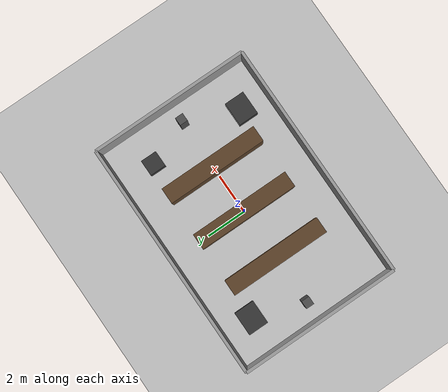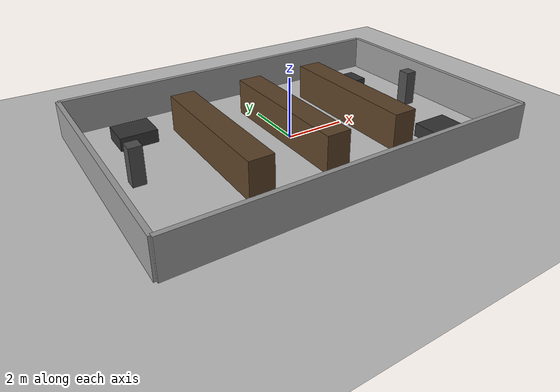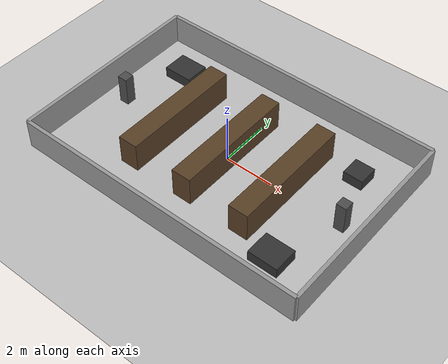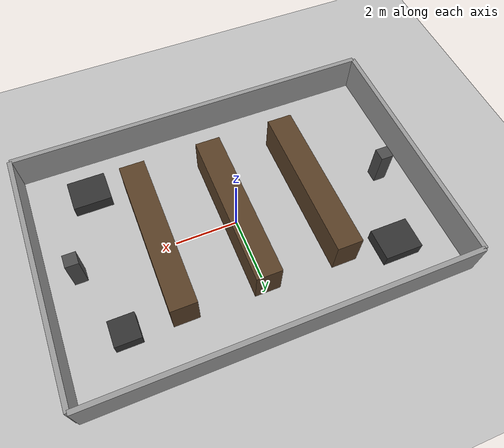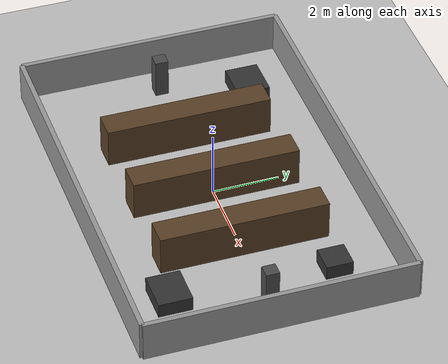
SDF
<?xml version="1.0" ?>
<sdf version="1.8">
  <world name="almacen">

    <!-- Systems -->
    <plugin filename="gz-sim-physics-system" name="gz::sim::systems::Physics"></plugin>
    <plugin filename="gz-sim-user-commands-system" name="gz::sim::systems::UserCommands"></plugin>
    <plugin filename="gz-sim-scene-broadcaster-system" name="gz::sim::systems::SceneBroadcaster"></plugin>
    <plugin filename="gz-sim-sensors-system" name="gz::sim::systems::Sensors">
      <render_engine>ogre2</render_engine>
    </plugin>

    <physics name="1ms" type="ignored">
      <max_step_size>0.001</max_step_size>
      <real_time_factor>1.0</real_time_factor>
    </physics>

    <!-- Light -->
    <light type="directional" name="sun">
      <cast_shadows>true</cast_shadows>
      <pose>0 0 10 0 0 0</pose>
      <diffuse>0.8 0.8 0.8 1</diffuse>
      <specular>0.2 0.2 0.2 1</specular>
      <attenuation>
        <range>1000</range>
        <constant>0.9</constant>
        <linear>0.01</linear>
        <quadratic>0.001</quadratic>
      </attenuation>
      <direction>-0.5 0.1 -0.9</direction>
    </light>

    <!-- Ground -->
    <model name="ground_plane">
      <static>true</static>
      <link name="link">
        <collision name="collision">
          <geometry>
            <plane>
              <normal>0 0 1</normal>
              <size>100 100</size>
            </plane>
          </geometry>
        </collision>
        <visual name="visual">
          <geometry>
            <plane>
              <normal>0 0 1</normal>
              <size>100 100</size>
            </plane>
          </geometry>
          <material>
            <ambient>0.75 0.75 0.75 1</ambient>
            <diffuse>0.75 0.75 0.75 1</diffuse>
            <specular>0.2 0.2 0.2 1</specular>
          </material>
        </visual>
      </link>
    </model>

    <!-- Warehouse perimeter (12m x 8m), walls height 1.2m      -->
    <!-- Centered at origin. SLAM-friendly: clear corners.     -->
    <!-- North wall -->
    <model name="wall_north">
      <static>true</static>
      <pose>0 4 0.6 0 0 0</pose>
      <link name="link">
        <collision name="collision">
          <geometry><box><size>12 0.15 1.2</size></box></geometry>
        </collision>
        <visual name="visual">
          <geometry><box><size>12 0.15 1.2</size></box></geometry>
          <material><ambient>0.6 0.6 0.6 1</ambient></material>
        </visual>
      </link>
    </model>

    <!-- South wall -->
    <model name="wall_south">
      <static>true</static>
      <pose>0 -4 0.6 0 0 0</pose>
      <link name="link">
        <collision name="collision">
          <geometry><box><size>12 0.15 1.2</size></box></geometry>
        </collision>
        <visual name="visual">
          <geometry><box><size>12 0.15 1.2</size></box></geometry>
          <material><ambient>0.6 0.6 0.6 1</ambient></material>
        </visual>
      </link>
    </model>

    <!-- East wall -->
    <model name="wall_east">
      <static>true</static>
      <pose>6 0 0.6 0 0 0</pose>
      <link name="link">
        <collision name="collision">
          <geometry><box><size>0.15 8 1.2</size></box></geometry>
        </collision>
        <visual name="visual">
          <geometry><box><size>0.15 8 1.2</size></box></geometry>
          <material><ambient>0.6 0.6 0.6 1</ambient></material>
        </visual>
      </link>
    </model>

    <!-- West wall -->
    <model name="wall_west">
      <static>true</static>
      <pose>-6 0 0.6 0 0 0</pose>
      <link name="link">
        <collision name="collision">
          <geometry><box><size>0.15 8 1.2</size></box></geometry>
        </collision>
        <visual name="visual">
          <geometry><box><size>0.15 8 1.2</size></box></geometry>
          <material><ambient>0.6 0.6 0.6 1</ambient></material>
        </visual>
      </link>
    </model>

    <!-- Shelving aisles (obstacles)   -->
    <!-- 3 aisles, leaving corridors   -->
    <model name="shelf_row_1">
      <static>true</static>
      <pose>-2.5 0 0.6 0 0 0</pose>
      <link name="link">
        <collision name="collision">
          <geometry><box><size>0.8 5.0 1.2</size></box></geometry>
        </collision>
        <visual name="visual">
          <geometry><box><size>0.8 5.0 1.2</size></box></geometry>
          <material><ambient>0.35 0.25 0.15 1</ambient></material>
        </visual>
      </link>
    </model>

    <model name="shelf_row_2">
      <static>true</static>
      <pose>0.0 0 0.6 0 0 0</pose>
      <link name="link">
        <collision name="collision">
          <geometry><box><size>0.8 5.0 1.2</size></box></geometry>
        </collision>
        <visual name="visual">
          <geometry><box><size>0.8 5.0 1.2</size></box></geometry>
          <material><ambient>0.35 0.25 0.15 1</ambient></material>
        </visual>
      </link>
    </model>

    <model name="shelf_row_3">
      <static>true</static>
      <pose>2.5 0 0.6 0 0 0</pose>
      <link name="link">
        <collision name="collision">
          <geometry><box><size>0.8 5.0 1.2</size></box></geometry>
        </collision>
        <visual name="visual">
          <geometry><box><size>0.8 5.0 1.2</size></box></geometry>
          <material><ambient>0.35 0.25 0.15 1</ambient></material>
        </visual>
      </link>
    </model>

    <!-- Pallets / boxes (small items) -->
    <model name="pallet_a">
      <static>true</static>
      <pose>-4.2 2.5 0.12 0 0 0</pose>
      <link name="link">
        <collision name="collision">
          <geometry><box><size>1.2 1.0 0.6</size></box></geometry>
        </collision>
        <visual name="visual">
          <geometry><box><size>1.2 1.0 0.6</size></box></geometry>
          <material><ambient>0.2 0.2 0.2 1</ambient></material>
        </visual>
      </link>
    </model>

    <model name="pallet_b">
      <static>true</static>
      <pose>4.0 -2.6 0.12 0 0 0</pose>
      <link name="link">
        <collision name="collision">
          <geometry><box><size>1.2 1.0 0.6</size></box></geometry>
        </collision>
        <visual name="visual">
          <geometry><box><size>1.2 1.0 0.6</size></box></geometry>
          <material><ambient>0.2 0.2 0.2 1</ambient></material>
        </visual>
      </link>
    </model>

    <model name="pallet_c">
      <static>true</static>
      <pose>4.2 2.2 0.12 0 0 0</pose>
      <link name="link">
        <collision name="collision">
          <geometry><box><size>0.8 0.8 0.6</size></box></geometry>
        </collision>
        <visual name="visual">
          <geometry><box><size>0.8 0.8 0.6</size></box></geometry>
          <material><ambient>0.2 0.2 0.2 1</ambient></material>
        </visual>
      </link>
    </model>

    <!-- Pillars (good SLAM features)  -->
    <model name="pillar_1">
      <static>true</static>
      <pose>-5 0 0.6 0 0 0</pose>
      <link name="link">
        <collision name="collision">
          <geometry><box><size>0.4 0.4 1.2</size></box></geometry>
        </collision>
        <visual name="visual">
          <geometry><box><size>0.4 0.4 1.2</size></box></geometry>
          <material><ambient>0.3 0.3 0.3 1</ambient></material>
        </visual>
      </link>
    </model>

    <model name="pillar_2">
      <static>true</static>
      <pose>5 0 0.6 0 0 0</pose>
      <link name="link">
        <collision name="collision">
          <geometry><box><size>0.4 0.4 1.2</size></box></geometry>
        </collision>
        <visual name="visual">
          <geometry><box><size>0.4 0.4 1.2</size></box></geometry>
          <material><ambient>0.3 0.3 0.3 1</ambient></material>
        </visual>
      </link>
    </model>

  </world>
</sdf>
